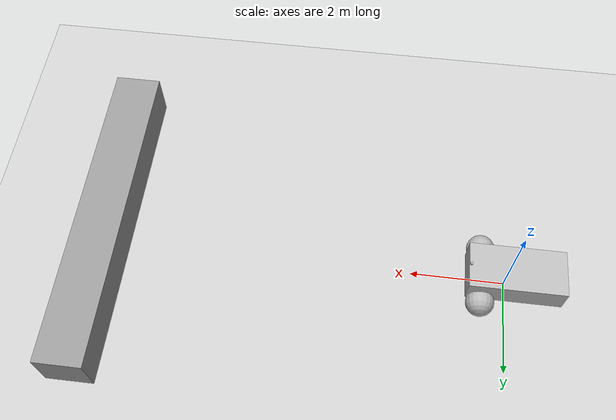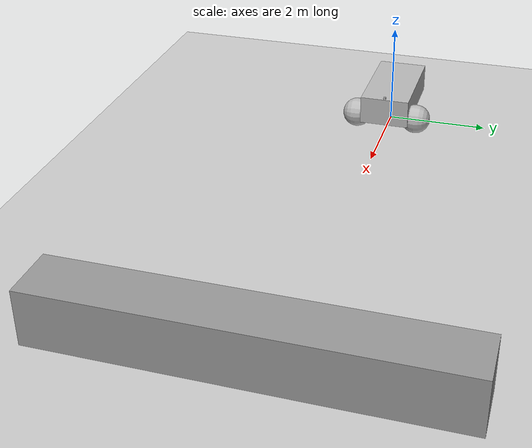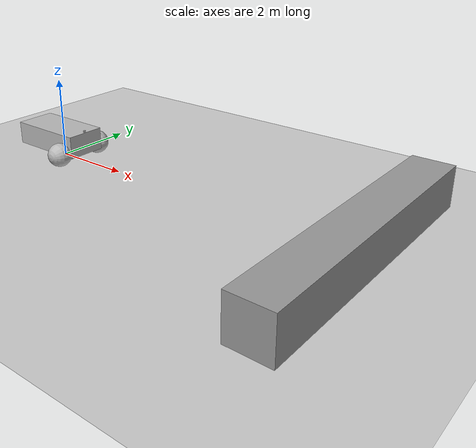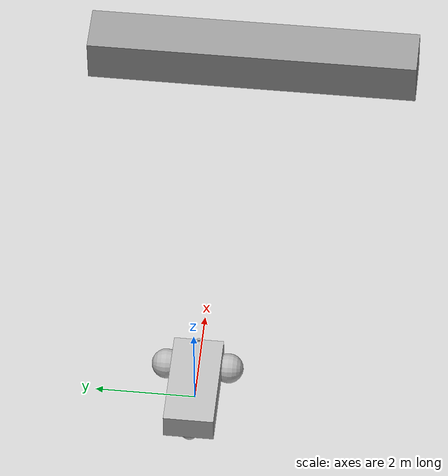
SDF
<sdf version="1.7">
 <world name="default">
  <model name="ground_plane">
   <static>1</static>
   <link name="link">
    <collision name="collision">
     <geometry><plane><normal>0 0 1</normal><size>100 100</size></plane></geometry>
     <surface>
      <contact><collide_bitmask>65535</collide_bitmask></contact>
      <friction><ode><mu>100</mu><mu2>50</mu2></ode></friction>
     </surface>
    </collision>
    <visual name="visual">
     <cast_shadows>0</cast_shadows>
     <geometry><plane><normal>0 0 1</normal><size>100 100</size></plane></geometry>
     <material>
      <script><uri>file://media/materials/scripts/gazebo.material</uri><name>Gazebo/Grey</name></script>
     </material>
    </visual>
   </link>
  </model>
  <light name="sun" type="directional">
   <pose>0 0 10 0 -0 0</pose>
   <diffuse>0.8 0.8 0.8 1</diffuse>
   <specular>0.2 0.2 0.2 1</specular>
   <attenuation>
    <range>1000</range>
    <constant>0.9</constant>
    <linear>0.01</linear>
    <quadratic>0.001</quadratic>
   </attenuation>
   <direction>-0.5 0.1 -0.9</direction>
   <spot><inner_angle>0</inner_angle><outer_angle>0</outer_angle><falloff>0</falloff></spot>
  </light>
  <model name="vehicle">
   <pose>-0.000877 -0.00015 0.324984 1.6e-05 1.4e-05 0.000267</pose>
   <link name="chassis">
    <pose>-0.151427 -0 0.175 0 -0 0</pose>
    <inertial>
     <mass>1.14395</mass>
     <inertia>
      <ixx>0.126164</ixx>
      <ixy>0</ixy>
      <ixz>0</ixz>
      <iyy>0.416519</iyy>
      <iyz>0</iyz>
      <izz>0.481014</izz>
     </inertia>
    </inertial>
    <visual name="visual"><geometry><box><size>2.01142 1 0.568726</size></box></geometry></visual>
    <collision name="collision"><geometry><box><size>2.01142 1 0.568726</size></box></geometry></collision>
   </link>
   <link name="left_wheel">
    <pose>0.554283 0.625029 -0.025 -1.5707 0 0</pose>
    <inertial>
     <mass>2</mass>
     <inertia><ixx>0.145833</ixx><ixy>0</ixy><ixz>0</ixz><iyy>0.145833</iyy><iyz>0</iyz><izz>0.125</izz></inertia>
    </inertial>
    <visual name="visual"><geometry><sphere><radius>0.3</radius></sphere></geometry></visual>
    <collision name="collision">
     <geometry><sphere><radius>0.3</radius></sphere></geometry>
     <surface>
      <friction><ode><mu>1</mu><mu2>1</mu2><slip1>0</slip1><slip2>0</slip2></ode></friction>
      <contact>
       <ode>
        <soft_cfm>0</soft_cfm>
        <soft_erp>0.2</soft_erp>
        <kp>1e+13</kp>
        <kd>1</kd>
        <max_vel>0.01</max_vel>
        <min_depth>0.01</min_depth>
       </ode>
      </contact>
     </surface>
    </collision>
   </link>
   <link name="right_wheel">
    <pose>0.554282 -0.625029 -0.025 -1.5707 0 0</pose>
    <inertial>
     <mass>2</mass>
     <inertia><ixx>0.145833</ixx><ixy>0</ixy><ixz>0</ixz><iyy>0.145833</iyy><iyz>0</iyz><izz>0.125</izz></inertia>
    </inertial>
    <visual name="visual"><geometry><sphere><radius>0.3</radius></sphere></geometry></visual>
    <collision name="collision">
     <geometry><sphere><radius>0.3</radius></sphere></geometry>
     <surface>
      <friction><ode><mu>1</mu><mu2>1</mu2><slip1>0</slip1><slip2>0</slip2></ode></friction>
      <contact>
       <ode>
        <soft_cfm>0</soft_cfm>
        <soft_erp>0.2</soft_erp>
        <kp>1e+13</kp>
        <kd>1</kd>
        <max_vel>0.01</max_vel>
        <min_depth>0.01</min_depth>
       </ode>
      </contact>
     </surface>
    </collision>
   </link>
   <link name="caster">
    <pose>-0.957138 -0 -0.125 0 -0 0</pose>
    <inertial>
     <mass>1</mass>
     <inertia><ixx>0.1</ixx><ixy>0</ixy><ixz>0</ixz><iyy>0.1</iyy><iyz>0</iyz><izz>0.1</izz></inertia>
    </inertial>
    <visual name="visual"><geometry><sphere><radius>0.2</radius></sphere></geometry></visual>
    <collision name="collision"><geometry><sphere><radius>0.2</radius></sphere></geometry></collision>
   </link>
   <model name="ray_sensor_box">
    <pose>0.822514 0 0.486819 0 -0 0</pose>
    <link name="ray_link">
     <visual name="visual_box"><geometry><box><size>0.05 0.05 0.05</size></box></geometry></visual>
     <collision name="collision_box">
      <geometry><box><size>0.05 0.05 0.05</size></box></geometry>
      <laser_retro>100</laser_retro>
     </collision>
     <sensor name="sensor_ray" type="ray">
      <ray>
       <scan>
        <horizontal>
         <samples>600</samples>
         <resolution>1</resolution>
         <min_angle>-0.5236</min_angle>
         <max_angle>0.5236</max_angle>
        </horizontal>
        <vertical>
         <samples>100</samples>
         <resolution>1</resolution>
         <min_angle>-0.5236</min_angle>
         <max_angle>0.5236</max_angle>
        </vertical>
       </scan>
       <range><min>0.05</min><max>500</max></range>
      </ray>
      <always_on>1</always_on>
      <update_rate>1</update_rate>
      <plugin name="pc2" filename="libgazebo_ros_ray_sensor.so">
       <ros><namespace>/ray</namespace><remapping>~/out:=pointcloud2</remapping></ros>
       <output_type>sensor_msgs/PointCloud2</output_type>
      </plugin>
      <plugin name="pc" filename="libgazebo_ros_ray_sensor.so">
       <ros><namespace>/ray</namespace><remapping>~/out:=pointcloud</remapping></ros>
       <output_type>sensor_msgs/PointCloud</output_type>
      </plugin>
      <plugin name="laserscan" filename="libgazebo_ros_ray_sensor.so">
       <ros><namespace>/ray</namespace><remapping>~/out:=laserscan</remapping></ros>
       <output_type>sensor_msgs/LaserScan</output_type>
      </plugin>
      <plugin name="range" filename="libgazebo_ros_ray_sensor.so">
       <ros><namespace>/ray</namespace><remapping>~/out:=range</remapping></ros>
       <output_type>sensor_msgs/Range</output_type>
      </plugin>
     </sensor>
     <sensor name="sensor_gpu_ray" type="gpu_ray">
      <ray>
       <scan>
        <horizontal>
         <samples>300</samples>
         <resolution>1</resolution>
         <min_angle>-0.5236</min_angle>
         <max_angle>0.5236</max_angle>
        </horizontal>
        <vertical><samples>1</samples><min_angle>0</min_angle><max_angle>0</max_angle></vertical>
       </scan>
       <range><min>0.05</min><max>50</max></range>
      </ray>
      <always_on>1</always_on>
      <update_rate>1</update_rate>
      <plugin name="pc2_gpu" filename="libgazebo_ros_ray_sensor.so">
       <ros><namespace>/gpu_ray</namespace><remapping>~/out:=pointcloud2</remapping></ros>
       <output_type>sensor_msgs/PointCloud2</output_type>
      </plugin>
      <plugin name="pc_gpu" filename="libgazebo_ros_ray_sensor.so">
       <ros><namespace>/gpu_ray</namespace><remapping>~/out:=pointcloud</remapping></ros>
       <output_type>sensor_msgs/PointCloud</output_type>
      </plugin>
      <plugin name="laserscan_gpu" filename="libgazebo_ros_ray_sensor.so">
       <ros><namespace>/gpu_ray</namespace><remapping>~/out:=laserscan</remapping></ros>
       <output_type>sensor_msgs/LaserScan</output_type>
      </plugin>
      <plugin name="range_gpu" filename="libgazebo_ros_ray_sensor.so">
       <ros><namespace>/gpu_ray</namespace><remapping>~/out:=range</remapping></ros>
       <output_type>sensor_msgs/Range</output_type>
      </plugin>
     </sensor>
     <inertial>
      <inertia><ixx>1</ixx><ixy>0</ixy><ixz>0</ixz><iyy>1</iyy><iyz>0</iyz><izz>1</izz></inertia>
      <mass>1</mass>
     </inertial>
    </link>
   </model>
   <joint name="left_wheel_joint" type="revolute">
    <parent>chassis</parent>
    <child>left_wheel</child>
    <axis>
     <xyz>0 0 1</xyz>
     <limit><lower>-1.79769e+308</lower><upper>1.79769e+308</upper></limit>
     <dynamics><spring_reference>0</spring_reference><spring_stiffness>0</spring_stiffness></dynamics>
    </axis>
   </joint>
   <joint name="right_wheel_joint" type="revolute">
    <parent>chassis</parent>
    <child>right_wheel</child>
    <axis>
     <xyz>0 0 1</xyz>
     <limit><lower>-1.79769e+308</lower><upper>1.79769e+308</upper></limit>
     <dynamics><spring_reference>0</spring_reference><spring_stiffness>0</spring_stiffness></dynamics>
    </axis>
   </joint>
   <joint name="caster_wheel" type="ball"><parent>chassis</parent><child>caster</child></joint>
   <joint name="sensor_link" type="revolute">
    <parent>chassis</parent>
    <child>ray_link</child>
    <axis>
     <xyz>0 0 1</xyz>
     <limit><lower>-1e+16</lower><upper>1e+16</upper></limit>
     <dynamics><spring_reference>0</spring_reference><spring_stiffness>0</spring_stiffness></dynamics>
    </axis>
   </joint>
   <plugin name="diff_drive" filename="libgazebo_ros_diff_drive.so">
    <ros>
     <namespace>/demo</namespace>
     <remapping>cmd_vel:=cmd_demo</remapping>
     <remapping>odom:=odom_demo</remapping>
    </ros>
    <left_joint>left_wheel_joint</left_joint>
    <right_joint>right_wheel_joint</right_joint>
    <wheel_separation>1.25</wheel_separation>
    <wheel_diameter>0.6</wheel_diameter>
    <max_wheel_torque>20</max_wheel_torque>
    <max_wheel_acceleration>1.0</max_wheel_acceleration>
    <publish_odom>1</publish_odom>
    <publish_odom_tf>1</publish_odom_tf>
    <publish_wheel_tf>1</publish_wheel_tf>
    <odometry_frame>odom_demo</odometry_frame>
    <robot_base_frame>chassis</robot_base_frame>
   </plugin>
  </model>
  <gravity>0 0 -9.8</gravity>
  <magnetic_field>6e-06 2.3e-05 -4.2e-05</magnetic_field>
  <atmosphere type="adiabatic"/>
  <physics type="ode">
   <max_step_size>0.001</max_step_size>
   <real_time_factor>1</real_time_factor>
   <real_time_update_rate>1000</real_time_update_rate>
  </physics>
  <scene><ambient>0.4 0.4 0.4 1</ambient><background>0.7 0.7 0.7 1</background><shadows>1</shadows></scene>
  <audio><device>default</device></audio>
  <spherical_coordinates>
   <surface_model>EARTH_WGS84</surface_model>
   <latitude_deg>0</latitude_deg>
   <longitude_deg>0</longitude_deg>
   <elevation>0</elevation>
   <heading_deg>0</heading_deg>
  </spherical_coordinates>
  <model name="unit_box">
   <pose>8.68804 -0.310228 0.490621 -0.002688 -1e-06 -0.000539</pose>
   <link name="link">
    <inertial>
     <mass>1</mass>
     <inertia>
      <ixx>0.166667</ixx>
      <ixy>0</ixy>
      <ixz>0</ixz>
      <iyy>0.166667</iyy>
      <iyz>0</iyz>
      <izz>0.166667</izz>
     </inertia>
    </inertial>
    <collision name="collision"><geometry><box><size>1 6.98255 1</size></box></geometry></collision>
    <visual name="visual">
     <geometry><box><size>1 6.98255 1</size></box></geometry>
     <material>
      <script><name>Gazebo/Grey</name><uri>file://media/materials/scripts/gazebo.material</uri></script>
     </material>
    </visual>
   </link>
  </model>
 </world>
</sdf>
